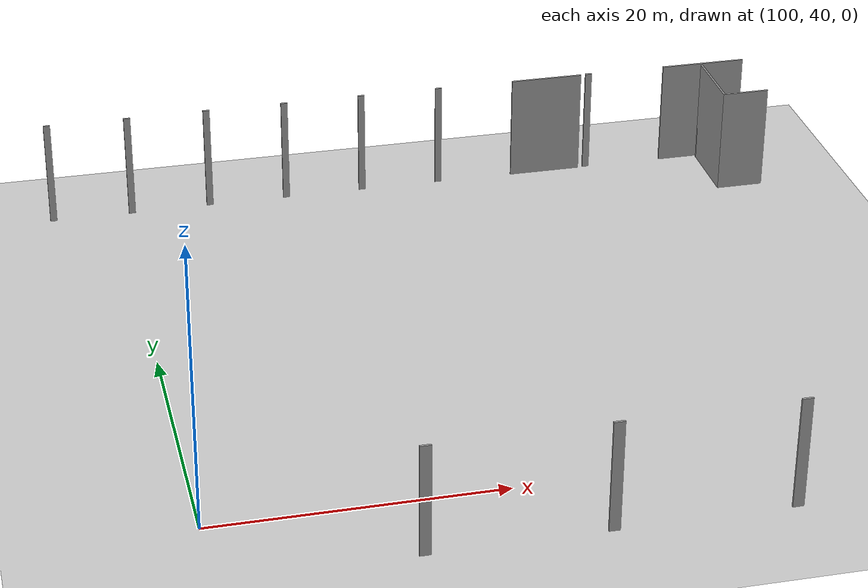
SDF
<sdf version="1.7">
 <world name="default">
  <model name="ground_plane">
   <static>1</static>
   <link name="link">
    <collision name="collision">
     <geometry><plane><normal>0 0 1</normal><size>100 100</size></plane></geometry>
     <surface><friction><ode><mu>100</mu><mu2>50</mu2></ode></friction></surface>
    </collision>
    <visual name="visual">
     <cast_shadows>0</cast_shadows>
     <geometry><plane><normal>0 0 1</normal><size>100 100</size></plane></geometry>
     <material>
      <script><uri>file://media/materials/scripts/gazebo.material</uri><name>Gazebo/Grey</name></script>
     </material>
    </visual>
   </link>
  </model>
  <model name="AM_Wall">
   <pose>59.0153 4.3742 0 0 -0 0</pose>
   <link name="Wall_154">
    <collision name="Wall_154_Collision">
     <geometry><box><size>0.75 0.15 8</size></box></geometry>
     <pose>0 0 4 0 -0 0</pose>
    </collision>
    <visual name="Wall_154_Visual">
     <pose>0 0 4 0 -0 0</pose>
     <geometry><box><size>0.75 0.15 8</size></box></geometry>
     <material>
      <script><uri>file://media/materials/scripts/gazebo.material</uri><name>Gazebo/Grey</name></script>
      <ambient>1 1 1 1</ambient>
     </material>
     <meta><layer>0</layer></meta>
    </visual>
    <pose>77.979 29.894 0 0 -0 0</pose>
   </link>
   <link name="Wall_156">
    <collision name="Wall_156_Collision">
     <geometry><box><size>0.75 0.15 8</size></box></geometry>
     <pose>0 0 4 0 -0 0</pose>
    </collision>
    <visual name="Wall_156_Visual">
     <pose>0 0 4 0 -0 0</pose>
     <geometry><box><size>0.75 0.15 8</size></box></geometry>
     <material>
      <script><uri>file://media/materials/scripts/gazebo.material</uri><name>Gazebo/Grey</name></script>
      <ambient>1 1 1 1</ambient>
     </material>
     <meta><layer>0</layer></meta>
    </visual>
    <pose>65.991 29.894 0 0 -0 0</pose>
   </link>
   <link name="Wall_158">
    <collision name="Wall_158_Collision">
     <geometry><box><size>0.75 0.15 8</size></box></geometry>
     <pose>0 0 4 0 -0 0</pose>
    </collision>
    <visual name="Wall_158_Visual">
     <pose>0 0 4 0 -0 0</pose>
     <geometry><box><size>0.75 0.15 8</size></box></geometry>
     <material>
      <script><uri>file://media/materials/scripts/gazebo.material</uri><name>Gazebo/Grey</name></script>
      <ambient>1 1 1 1</ambient>
     </material>
     <meta><layer>0</layer></meta>
    </visual>
    <pose>54.004 29.914 0 0 -0 0</pose>
   </link>
   <link name="Wall_60">
    <collision name="Wall_60_Collision">
     <geometry><box><size>0.5 0.15 8</size></box></geometry>
     <pose>0 0 4 0 -0 0</pose>
    </collision>
    <visual name="Wall_60_Visual">
     <pose>0 0 4 0 -0 0</pose>
     <geometry><box><size>0.5 0.15 8</size></box></geometry>
     <material>
      <script><uri>file://media/materials/scripts/gazebo.material</uri><name>Gazebo/Grey</name></script>
      <ambient>1 1 1 1</ambient>
     </material>
     <meta><layer>0</layer></meta>
    </visual>
    <pose>36.002 77.847 0 0 -0 3.14159</pose>
   </link>
   <link name="Wall_62">
    <collision name="Wall_62_Collision">
     <geometry><box><size>0.5 0.15 8</size></box></geometry>
     <pose>0 0 4 0 -0 0</pose>
    </collision>
    <visual name="Wall_62_Visual">
     <pose>0 0 4 0 -0 0</pose>
     <geometry><box><size>0.5 0.15 8</size></box></geometry>
     <material>
      <script><uri>file://media/materials/scripts/gazebo.material</uri><name>Gazebo/Grey</name></script>
      <ambient>1 1 1 1</ambient>
     </material>
     <meta><layer>0</layer></meta>
    </visual>
    <pose>41.978 77.817 0 0 -0 0</pose>
   </link>
   <link name="Wall_64">
    <collision name="Wall_64_Collision">
     <geometry><box><size>0.5 0.15 8</size></box></geometry>
     <pose>0 0 4 0 -0 0</pose>
    </collision>
    <visual name="Wall_64_Visual">
     <pose>0 0 4 0 -0 0</pose>
     <geometry><box><size>0.5 0.15 8</size></box></geometry>
     <material>
      <script><uri>file://media/materials/scripts/gazebo.material</uri><name>Gazebo/Grey</name></script>
      <ambient>1 1 1 1</ambient>
     </material>
     <meta><layer>0</layer></meta>
    </visual>
    <pose>47.974 77.867 0 0 -0 0</pose>
   </link>
   <link name="Wall_66">
    <collision name="Wall_66_Collision">
     <geometry><box><size>0.5 0.15 8</size></box></geometry>
     <pose>0 0 4 0 -0 0</pose>
    </collision>
    <visual name="Wall_66_Visual">
     <pose>0 0 4 0 -0 0</pose>
     <geometry><box><size>0.5 0.15 8</size></box></geometry>
     <material>
      <script><uri>file://media/materials/scripts/gazebo.material</uri><name>Gazebo/Grey</name></script>
      <ambient>1 1 1 1</ambient>
     </material>
     <meta><layer>0</layer></meta>
    </visual>
    <pose>53.93 77.857 0 0 -0 0</pose>
   </link>
   <link name="Wall_68">
    <collision name="Wall_68_Collision">
     <geometry><box><size>0.5 0.15 8</size></box></geometry>
     <pose>0 0 4 0 -0 0</pose>
    </collision>
    <visual name="Wall_68_Visual">
     <pose>0 0 4 0 -0 0</pose>
     <geometry><box><size>0.5 0.15 8</size></box></geometry>
     <material>
      <script><uri>file://media/materials/scripts/gazebo.material</uri><name>Gazebo/Grey</name></script>
      <ambient>1 1 1 1</ambient>
     </material>
     <meta><layer>0</layer></meta>
    </visual>
    <pose>59.896 77.877 0 0 -0 0</pose>
   </link>
   <link name="Wall_70">
    <collision name="Wall_70_Collision">
     <geometry><box><size>0.5 0.15 8</size></box></geometry>
     <pose>0 0 4 0 -0 0</pose>
    </collision>
    <visual name="Wall_70_Visual">
     <pose>0 0 4 0 -0 0</pose>
     <geometry><box><size>0.5 0.15 8</size></box></geometry>
     <material>
      <script><uri>file://media/materials/scripts/gazebo.material</uri><name>Gazebo/Grey</name></script>
      <ambient>1 1 1 1</ambient>
     </material>
     <meta><layer>0</layer></meta>
    </visual>
    <pose>65.952 77.877 0 0 -0 0</pose>
   </link>
   <link name="Wall_72">
    <collision name="Wall_72_Collision">
     <geometry><box><size>5.5 0.15 8</size></box></geometry>
     <pose>0 0 4 0 -0 0</pose>
    </collision>
    <visual name="Wall_72_Visual">
     <pose>0 0 4 0 -0 0</pose>
     <geometry><box><size>5.5 0.15 8</size></box></geometry>
     <material>
      <script><uri>file://media/materials/scripts/gazebo.material</uri><name>Gazebo/Grey</name></script>
      <ambient>1 1 1 1</ambient>
     </material>
     <meta><layer>0</layer></meta>
    </visual>
    <pose>74.537 77.827 0 0 -0 0</pose>
   </link>
   <link name="Wall_74">
    <collision name="Wall_74_Collision">
     <geometry><box><size>0.5 0.15 8</size></box></geometry>
     <pose>0 0 4 0 -0 0</pose>
    </collision>
    <visual name="Wall_74_Visual">
     <pose>0 0 4 0 -0 0</pose>
     <geometry><box><size>0.5 0.15 8</size></box></geometry>
     <material>
      <script><uri>file://media/materials/scripts/gazebo.material</uri><name>Gazebo/Grey</name></script>
      <ambient>1 1 1 1</ambient>
     </material>
     <meta><layer>0</layer></meta>
    </visual>
    <pose>77.916 77.882 0 0 -0 0</pose>
   </link>
   <link name="Wall_76">
    <collision name="Wall_76_Collision">
     <geometry><box><size>6.5 0.15 8</size></box></geometry>
     <pose>0 0 4 0 -0 0</pose>
    </collision>
    <visual name="Wall_76_Visual">
     <pose>0 0 4 0 -0 0</pose>
     <geometry><box><size>6.5 0.15 8</size></box></geometry>
     <material>
      <script><uri>file://media/materials/scripts/gazebo.material</uri><name>Gazebo/Grey</name></script>
      <ambient>1 1 1 1</ambient>
     </material>
     <meta><layer>0</layer></meta>
    </visual>
    <pose>87.202 77.843 0 0 -0 0</pose>
   </link>
   <link name="Wall_78">
    <collision name="Wall_78_Collision">
     <geometry><box><size>0.5 0.15 2.5</size></box></geometry>
     <pose>0 0 1.25 0 -0 0</pose>
    </collision>
    <visual name="Wall_78_Visual">
     <pose>0 0 1.25 0 -0 0</pose>
     <geometry><box><size>0.5 0.15 2.5</size></box></geometry>
     <material>
      <script><uri>file://media/materials/scripts/gazebo.material</uri><name>Gazebo/Grey</name></script>
      <ambient>1 1 1 1</ambient>
     </material>
     <meta><layer>0</layer></meta>
    </visual>
    <pose>90.377 77.6678 0 0 -0 -1.57063</pose>
   </link>
   <link name="Wall_79">
    <collision name="Wall_79_Collision">
     <geometry><box><size>3.5 0.15 2.5</size></box></geometry>
     <pose>0 0 1.25 0 -0 0</pose>
    </collision>
    <visual name="Wall_79_Visual">
     <pose>0 0 1.25 0 -0 0</pose>
     <geometry><box><size>3.5 0.15 2.5</size></box></geometry>
     <material>
      <script><uri>file://media/materials/scripts/gazebo.material</uri><name>Gazebo/Grey</name></script>
      <ambient>1 1 1 1</ambient>
     </material>
     <meta><layer>0</layer></meta>
    </visual>
    <pose>88.702 77.4928 0 0 -0 3.14148</pose>
   </link>
   <link name="Wall_80">
    <collision name="Wall_80_Collision">
     <geometry><box><size>5.54062 0.15 8</size></box></geometry>
     <pose>0 0 4 0 -0 0</pose>
    </collision>
    <visual name="Wall_80_Visual">
     <pose>0 0 4 0 -0 0</pose>
     <geometry><box><size>5.54062 0.15 8</size></box></geometry>
     <material>
      <script><uri>file://media/materials/scripts/gazebo.material</uri><name>Gazebo/Grey</name></script>
      <ambient>1 1 1 1</ambient>
     </material>
     <meta><layer>0</layer></meta>
    </visual>
    <pose>87.027 74.7975 0 0 -0 -1.5708</pose>
   </link>
   <link name="Wall_81">
    <collision name="Wall_81_Collision">
     <geometry><box><size>3.54094 0.15 8</size></box></geometry>
     <pose>0 0 4 0 -0 0</pose>
    </collision>
    <visual name="Wall_81_Visual">
     <pose>0 0 4 0 -0 0</pose>
     <geometry><box><size>3.54094 0.15 8</size></box></geometry>
     <material>
      <script><uri>file://media/materials/scripts/gazebo.material</uri><name>Gazebo/Grey</name></script>
      <ambient>1 1 1 1</ambient>
     </material>
     <meta><layer>0</layer></meta>
    </visual>
    <pose>88.7225 72.1025 0 0 -0 0.000295</pose>
   </link>
   <static>1</static>
  </model>
 </world>
</sdf>
